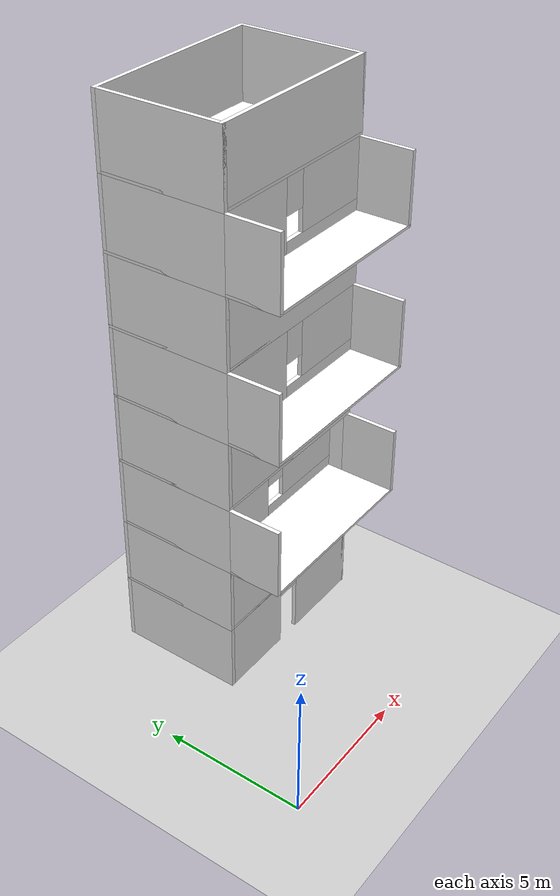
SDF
<sdf version="1.6">
 <world name="default">
  <light name="sun" type="directional">
   <pose>0 0 10 0 -0 0</pose>
   <diffuse>0.8 0.8 0.8 1</diffuse>
   <specular>0.1 0.1 0.1 1</specular>
   <attenuation>
    <range>1000</range>
    <constant>0.9</constant>
    <linear>0.01</linear>
    <quadratic>0.001</quadratic>
   </attenuation>
   <direction>-0.5 0.5 -1</direction>
  </light>
  <model name="ground_plane">
   <static>1</static>
   <link name="link">
    <collision name="collision">
     <geometry><plane><normal>0 0 1</normal><size>100 100</size></plane></geometry>
     <surface><friction><ode><mu>100</mu><mu2>50</mu2></ode></friction></surface>
    </collision>
    <visual name="visual">
     <cast_shadows>0</cast_shadows>
     <geometry><plane><normal>0 0 1</normal><size>100 100</size></plane></geometry>
     <material>
      <script><uri>file://media/materials/scripts/gazebo.material</uri><name>Gazebo/Grey</name></script>
     </material>
    </visual>
   </link>
  </model>
  <gravity>0 0 -9.8</gravity>
  <magnetic_field>6e-06 2.3e-05 -4.2e-05</magnetic_field>
  <atmosphere type="adiabatic"/>
  <physics name="default_physics" default="0" type="ode">
   <max_step_size>0.001</max_step_size>
   <real_time_factor>1</real_time_factor>
   <real_time_update_rate>1000</real_time_update_rate>
  </physics>
  <scene><ambient>0.4 0.4 0.4 1</ambient><background>0.7 0.7 0.7 1</background><shadows>1</shadows></scene>
  <spherical_coordinates>
   <surface_model>EARTH_WGS84</surface_model>
   <latitude_deg>0</latitude_deg>
   <longitude_deg>0</longitude_deg>
   <elevation>0</elevation>
   <heading_deg>0</heading_deg>
  </spherical_coordinates>
  <model name="build_1">
   <pose>6.28355 7.0071 0 0 -0 0</pose>
   <link name="Floor_10">
    <collision name="Floor_10_Collision">
     <geometry><box><size>6.75 4.5 0.1</size></box></geometry>
     <pose>0 0 0.05 0 -0 0</pose>
    </collision>
    <visual name="Floor_10_Visual">
     <pose>0 0 0.05 0 -0 0</pose>
     <geometry><box><size>6.75 4.5 0.1</size></box></geometry>
     <material>
      <script>
       <uri>model://build_1/materials/scripts</uri>
       <uri>model://build_1/materials/textures</uri>
       <name>wallCrack4/Diffuse</name>
      </script>
      <ambient>1 1 1 1</ambient>
     </material>
    </visual>
    <pose>0 0 2.5 0 -0 0</pose>
   </link>
   <link name="Floor_11">
    <collision name="Floor_11_Collision">
     <geometry><box><size>6.75 6.35 0.1</size></box></geometry>
     <pose>0 0 0.05 0 -0 0</pose>
    </collision>
    <visual name="Floor_11_Visual">
     <pose>0 0 0.05 0 -0 0</pose>
     <geometry><box><size>6.75 6.35 0.1</size></box></geometry>
     <material>
      <script>
       <uri>model://build_1/materials/scripts</uri>
       <uri>model://build_1/materials/textures</uri>
       <name>wallCrack4/Diffuse</name>
      </script>
      <ambient>1 1 1 1</ambient>
     </material>
    </visual>
    <pose>0 -0.925 5 0 -0 0</pose>
   </link>
   <link name="Floor_12">
    <collision name="Floor_12_Collision">
     <geometry><box><size>6.75 4.5 0.1</size></box></geometry>
     <pose>0 0 0.05 0 -0 0</pose>
    </collision>
    <visual name="Floor_12_Visual">
     <pose>0 0 0.05 0 -0 0</pose>
     <geometry><box><size>6.75 4.5 0.1</size></box></geometry>
     <material>
      <script>
       <uri>model://build_1/materials/scripts</uri>
       <uri>model://build_1/materials/textures</uri>
       <name>wallCrack4/Diffuse</name>
      </script>
      <ambient>1 1 1 1</ambient>
     </material>
    </visual>
    <pose>0 0 7.5 0 -0 0</pose>
   </link>
   <link name="Floor_13">
    <collision name="Floor_13_Collision">
     <geometry><box><size>6.75 6.35 0.1</size></box></geometry>
     <pose>0 0 0.05 0 -0 0</pose>
    </collision>
    <visual name="Floor_13_Visual">
     <pose>0 0 0.05 0 -0 0</pose>
     <geometry><box><size>6.75 6.35 0.1</size></box></geometry>
     <material>
      <script>
       <uri>model://build_1/materials/scripts</uri>
       <uri>model://build_1/materials/textures</uri>
       <name>wallCrack4/Diffuse</name>
      </script>
      <ambient>1 1 1 1</ambient>
     </material>
    </visual>
    <pose>0 -0.925 10 0 -0 0</pose>
   </link>
   <link name="Floor_14">
    <collision name="Floor_14_Collision">
     <geometry><box><size>6.75 4.5 0.1</size></box></geometry>
     <pose>0 0 0.05 0 -0 0</pose>
    </collision>
    <visual name="Floor_14_Visual">
     <pose>0 0 0.05 0 -0 0</pose>
     <geometry><box><size>6.75 4.5 0.1</size></box></geometry>
     <material>
      <script>
       <uri>model://build_1/materials/scripts</uri>
       <uri>model://build_1/materials/textures</uri>
       <name>wallCrack4/Diffuse</name>
      </script>
      <ambient>1 1 1 1</ambient>
     </material>
    </visual>
    <pose>0 0 12.5 0 -0 0</pose>
   </link>
   <link name="Floor_15">
    <collision name="Floor_15_Collision">
     <geometry><box><size>6.75 6.35 0.1</size></box></geometry>
     <pose>0 0 0.05 0 -0 0</pose>
    </collision>
    <visual name="Floor_15_Visual">
     <pose>0 0 0.05 0 -0 0</pose>
     <geometry><box><size>6.75 6.35 0.1</size></box></geometry>
     <material>
      <script>
       <uri>model://build_1/materials/scripts</uri>
       <uri>model://build_1/materials/textures</uri>
       <name>wallCrack4/Diffuse</name>
      </script>
      <ambient>1 1 1 1</ambient>
     </material>
    </visual>
    <pose>0 -0.925 15 0 -0 0</pose>
   </link>
   <link name="Floor_16">
    <collision name="Floor_16_Collision">
     <geometry><box><size>6.75 4.5 0.1</size></box></geometry>
     <pose>0 0 0.05 0 -0 0</pose>
    </collision>
    <visual name="Floor_16_Visual">
     <pose>0 0 0.05 0 -0 0</pose>
     <geometry><box><size>6.75 4.5 0.1</size></box></geometry>
     <material>
      <script>
       <uri>model://build_1/materials/scripts</uri>
       <uri>model://build_1/materials/textures</uri>
       <name>wallCrack4/Diffuse</name>
      </script>
      <ambient>1 1 1 1</ambient>
     </material>
    </visual>
    <pose>0 0 17.5 0 -0 0</pose>
   </link>
   <link name="Wall_169">
    <pose>0 -2.175 0 0 -0 0</pose>
    <visual name="Wall_169_Visual_0">
     <pose>-1.98282 0 1.25 0 -0 0</pose>
     <geometry><box><size>2.78436 0.15 2.5</size></box></geometry>
     <material>
      <script>
       <uri>model://build_1/materials/scripts</uri>
       <uri>model://build_1/materials/textures</uri>
       <name>wallCrack7/Diffuse</name>
      </script>
      <ambient>1 1 1 1</ambient>
     </material>
    </visual>
    <collision name="Wall_169_Collision_0">
     <geometry><box><size>2.78436 0.15 2.5</size></box></geometry>
     <pose>-1.98282 0 1.25 0 -0 0</pose>
    </collision>
    <visual name="Wall_169_Visual_1">
     <pose>1.84218 0 1.25 0 -0 0</pose>
     <geometry><box><size>3.06564 0.15 2.5</size></box></geometry>
     <material>
      <script>
       <uri>model://build_1/materials/scripts</uri>
       <uri>model://build_1/materials/textures</uri>
       <name>wallCrack4/Diffuse</name>
      </script>
      <ambient>1 1 1 1</ambient>
     </material>
    </visual>
    <collision name="Wall_169_Collision_1">
     <geometry><box><size>3.06564 0.15 2.5</size></box></geometry>
     <pose>1.84218 0 1.25 0 -0 0</pose>
    </collision>
    <visual name="Wall_169_Visual_2">
     <pose>-0.140641 0 2.25 0 -0 0</pose>
     <geometry><box><size>0.9 0.15 0.5</size></box></geometry>
     <material>
      <script>
       <uri>model://build_1/materials/scripts</uri>
       <uri>model://build_1/materials/textures</uri>
       <name>wallCrack4/Diffuse</name>
      </script>
      <ambient>1 1 1 1</ambient>
     </material>
    </visual>
    <collision name="Wall_169_Collision_2">
     <geometry><box><size>0.9 0.15 0.5</size></box></geometry>
     <pose>-0.140641 0 2.25 0 -0 0</pose>
    </collision>
   </link>
   <link name="Wall_170">
    <collision name="Wall_170_Collision">
     <geometry><box><size>4.5 0.15 2.5</size></box></geometry>
     <pose>0 0 1.25 0 -0 0</pose>
    </collision>
    <visual name="Wall_170_Visual">
     <pose>0 0 1.25 0 -0 0</pose>
     <geometry><box><size>4.5 0.15 2.5</size></box></geometry>
     <material>
      <script>
       <uri>model://build_1/materials/scripts</uri>
       <uri>model://build_1/materials/textures</uri>
       <name>wallCrack8/Diffuse</name>
      </script>
      <ambient>1 1 1 1</ambient>
     </material>
    </visual>
    <pose>3.3 0 0 0 -0 1.5708</pose>
   </link>
   <link name="Wall_171">
    <collision name="Wall_171_Collision">
     <geometry><box><size>6.75 0.15 2.5</size></box></geometry>
     <pose>0 0 1.25 0 -0 0</pose>
    </collision>
    <visual name="Wall_171_Visual">
     <pose>0 0 1.25 0 -0 0</pose>
     <geometry><box><size>6.75 0.15 2.5</size></box></geometry>
     <material>
      <script>
       <uri>model://build_1/materials/scripts</uri>
       <uri>model://build_1/materials/textures</uri>
       <name>wallCrack8/Diffuse</name>
      </script>
      <ambient>1 1 1 1</ambient>
     </material>
    </visual>
    <pose>0 2.175 0 0 -0 3.14159</pose>
   </link>
   <link name="Wall_173">
    <collision name="Wall_173_Collision">
     <geometry><box><size>4.5 0.15 2.5</size></box></geometry>
     <pose>0 0 1.25 0 -0 0</pose>
    </collision>
    <visual name="Wall_173_Visual">
     <pose>0 0 1.25 0 -0 0</pose>
     <geometry><box><size>4.5 0.15 2.5</size></box></geometry>
     <material>
      <script>
       <uri>model://build_1/materials/scripts</uri>
       <uri>model://build_1/materials/textures</uri>
       <name>wallCrack8/Diffuse</name>
      </script>
      <ambient>1 1 1 1</ambient>
     </material>
    </visual>
    <pose>-3.3 0 0 0 0 -1.5708</pose>
   </link>
   <link name="Wall_175">
    <collision name="Wall_175_Collision">
     <geometry><box><size>6.75 0.15 2.5</size></box></geometry>
     <pose>0 0 1.25 0 -0 0</pose>
    </collision>
    <visual name="Wall_175_Visual">
     <pose>0 0 1.25 0 -0 0</pose>
     <geometry><box><size>6.75 0.15 2.5</size></box></geometry>
     <material>
      <script>
       <uri>model://build_1/materials/scripts</uri>
       <uri>model://build_1/materials/textures</uri>
       <name>wallCrack4/Diffuse</name>
      </script>
      <ambient>1 1 1 1</ambient>
     </material>
    </visual>
    <pose>0 -2.175 2.5 0 -0 0</pose>
   </link>
   <link name="Wall_176">
    <collision name="Wall_176_Collision">
     <geometry><box><size>4.5 0.15 2.5</size></box></geometry>
     <pose>0 0 1.25 0 -0 0</pose>
    </collision>
    <visual name="Wall_176_Visual">
     <pose>0 0 1.25 0 -0 0</pose>
     <geometry><box><size>4.5 0.15 2.5</size></box></geometry>
     <material>
      <script>
       <uri>model://build_1/materials/scripts</uri>
       <uri>model://build_1/materials/textures</uri>
       <name>wallCrack7/Diffuse</name>
      </script>
      <ambient>1 1 1 1</ambient>
     </material>
    </visual>
    <pose>3.3 0 2.5 0 -0 1.5708</pose>
   </link>
   <link name="Wall_177">
    <collision name="Wall_177_Collision">
     <geometry><box><size>6.75 0.15 2.5</size></box></geometry>
     <pose>0 0 1.25 0 -0 0</pose>
    </collision>
    <visual name="Wall_177_Visual">
     <pose>0 0 1.25 0 -0 0</pose>
     <geometry><box><size>6.75 0.15 2.5</size></box></geometry>
     <material>
      <script>
       <uri>model://build_1/materials/scripts</uri>
       <uri>model://build_1/materials/textures</uri>
       <name>wallCrack4/Diffuse</name>
      </script>
      <ambient>1 1 1 1</ambient>
     </material>
    </visual>
    <pose>0 2.175 2.5 0 -0 3.14159</pose>
   </link>
   <link name="Wall_178">
    <collision name="Wall_178_Collision">
     <geometry><box><size>4.5 0.15 2.5</size></box></geometry>
     <pose>0 0 1.25 0 -0 0</pose>
    </collision>
    <visual name="Wall_178_Visual">
     <pose>0 0 1.25 0 -0 0</pose>
     <geometry><box><size>4.5 0.15 2.5</size></box></geometry>
     <material>
      <script>
       <uri>model://build_1/materials/scripts</uri>
       <uri>model://build_1/materials/textures</uri>
       <name>wallCrack3/Diffuse</name>
      </script>
      <ambient>1 1 1 1</ambient>
     </material>
    </visual>
    <pose>-3.3 0 2.5 0 0 -1.5708</pose>
   </link>
   <link name="Wall_180">
    <collision name="Wall_180_Collision">
     <geometry><box><size>4.5 0.15 2.5</size></box></geometry>
     <pose>0 0 1.25 0 -0 0</pose>
    </collision>
    <visual name="Wall_180_Visual">
     <pose>0 0 1.25 0 -0 0</pose>
     <geometry><box><size>4.5 0.15 2.5</size></box></geometry>
     <material>
      <script>
       <uri>model://build_1/materials/scripts</uri>
       <uri>model://build_1/materials/textures</uri>
       <name>wallCrack4/Diffuse</name>
      </script>
      <ambient>1 1 1 1</ambient>
     </material>
    </visual>
    <pose>3.3 0 5 0 -0 1.5708</pose>
   </link>
   <link name="Wall_181">
    <collision name="Wall_181_Collision">
     <geometry><box><size>6.75 0.15 2.5</size></box></geometry>
     <pose>0 0 1.25 0 -0 0</pose>
    </collision>
    <visual name="Wall_181_Visual">
     <pose>0 0 1.25 0 -0 0</pose>
     <geometry><box><size>6.75 0.15 2.5</size></box></geometry>
     <material>
      <script>
       <uri>model://build_1/materials/scripts</uri>
       <uri>model://build_1/materials/textures</uri>
       <name>wallCrack7/Diffuse</name>
      </script>
      <ambient>1 1 1 1</ambient>
     </material>
    </visual>
    <pose>0 2.175 5 0 -0 3.14159</pose>
   </link>
   <link name="Wall_182">
    <collision name="Wall_182_Collision">
     <geometry><box><size>4.5 0.15 2.5</size></box></geometry>
     <pose>0 0 1.25 0 -0 0</pose>
    </collision>
    <visual name="Wall_182_Visual">
     <pose>0 0 1.25 0 -0 0</pose>
     <geometry><box><size>4.5 0.15 2.5</size></box></geometry>
     <material>
      <script>
       <uri>model://build_1/materials/scripts</uri>
       <uri>model://build_1/materials/textures</uri>
       <name>wallCrack4/Diffuse</name>
      </script>
      <ambient>1 1 1 1</ambient>
     </material>
    </visual>
    <pose>-3.3 0 5 0 0 -1.5708</pose>
   </link>
   <link name="Wall_183">
    <collision name="Wall_183_Collision">
     <geometry><box><size>2 0.15 2.5</size></box></geometry>
     <pose>0 0 1.25 0 -0 0</pose>
    </collision>
    <visual name="Wall_183_Visual">
     <pose>0 0 1.25 0 -0 0</pose>
     <geometry><box><size>2 0.15 2.5</size></box></geometry>
     <material>
      <script>
       <uri>model://build_1/materials/scripts</uri>
       <uri>model://build_1/materials/textures</uri>
       <name>wallCrack4/Diffuse</name>
      </script>
      <ambient>1 1 1 1</ambient>
     </material>
    </visual>
    <pose>-3.3 -3.1 5 0 0 -1.5708</pose>
   </link>
   <link name="Wall_185">
    <collision name="Wall_185_Collision">
     <geometry><box><size>2 0.15 2.5</size></box></geometry>
     <pose>0 0 1.25 0 -0 0</pose>
    </collision>
    <visual name="Wall_185_Visual">
     <pose>0 0 1.25 0 -0 0</pose>
     <geometry><box><size>2 0.15 2.5</size></box></geometry>
     <material>
      <script>
       <uri>model://build_1/materials/scripts</uri>
       <uri>model://build_1/materials/textures</uri>
       <name>wallCrack4/Diffuse</name>
      </script>
      <ambient>1 1 1 1</ambient>
     </material>
    </visual>
    <pose>3.3 -3.1 5 0 0 -1.5708</pose>
   </link>
   <link name="Wall_195">
    <pose>0.023026 -1.48981 5 0 -0 0</pose>
    <visual name="Wall_195_Visual_0">
     <pose>-1.83079 0 1.25 0 -0 0</pose>
     <geometry><box><size>2.83842 0.15 2.5</size></box></geometry>
     <material>
      <script>
       <uri>model://build_1/materials/scripts</uri>
       <uri>model://build_1/materials/textures</uri>
       <name>wallCrack4/Diffuse</name>
      </script>
      <ambient>1 1 1 1</ambient>
     </material>
    </visual>
    <collision name="Wall_195_Collision_0">
     <geometry><box><size>2.83842 0.15 2.5</size></box></geometry>
     <pose>-1.83079 0 1.25 0 -0 0</pose>
    </collision>
    <visual name="Wall_195_Visual_1">
     <pose>1.41921 0 0.25 0 -0 0</pose>
     <geometry><box><size>3.66158 0.15 0.5</size></box></geometry>
     <material>
      <script>
       <uri>model://build_1/materials/scripts</uri>
       <uri>model://build_1/materials/textures</uri>
       <name>wallCrack4/Diffuse</name>
      </script>
      <ambient>1 1 1 1</ambient>
     </material>
    </visual>
    <collision name="Wall_195_Collision_1">
     <geometry><box><size>3.66158 0.15 0.5</size></box></geometry>
     <pose>1.41921 0 0.25 0 -0 0</pose>
    </collision>
    <visual name="Wall_195_Visual_2">
     <pose>1.81921 0 1.5 0 -0 0</pose>
     <geometry><box><size>2.86158 0.15 2</size></box></geometry>
     <material>
      <script>
       <uri>model://build_1/materials/scripts</uri>
       <uri>model://build_1/materials/textures</uri>
       <name>wallCrack4/Diffuse</name>
      </script>
      <ambient>1 1 1 1</ambient>
     </material>
    </visual>
    <collision name="Wall_195_Collision_2">
     <geometry><box><size>2.86158 0.15 2</size></box></geometry>
     <pose>1.81921 0 1.5 0 -0 0</pose>
    </collision>
    <visual name="Wall_195_Visual_3">
     <pose>-0.01158 0 1.9 0 -0 0</pose>
     <geometry><box><size>0.8 0.15 1.2</size></box></geometry>
     <material>
      <script>
       <uri>model://build_1/materials/scripts</uri>
       <uri>model://build_1/materials/textures</uri>
       <name>wallCrack4/Diffuse</name>
      </script>
      <ambient>1 1 1 1</ambient>
     </material>
    </visual>
    <collision name="Wall_195_Collision_3">
     <geometry><box><size>0.8 0.15 1.2</size></box></geometry>
     <pose>-0.01158 0 1.9 0 -0 0</pose>
    </collision>
   </link>
   <link name="Wall_198">
    <collision name="Wall_198_Collision">
     <geometry><box><size>6.75 0.15 2.5</size></box></geometry>
     <pose>0 0 1.25 0 -0 0</pose>
    </collision>
    <visual name="Wall_198_Visual">
     <pose>0 0 1.25 0 -0 0</pose>
     <geometry><box><size>6.75 0.15 2.5</size></box></geometry>
     <material>
      <script>
       <uri>model://build_1/materials/scripts</uri>
       <uri>model://build_1/materials/textures</uri>
       <name>wallCrack4/Diffuse</name>
      </script>
      <ambient>1 1 1 1</ambient>
     </material>
    </visual>
    <pose>0 2.175 7.5 0 -0 3.14159</pose>
   </link>
   <link name="Wall_199">
    <collision name="Wall_199_Collision">
     <geometry><box><size>4.5 0.15 2.5</size></box></geometry>
     <pose>0 0 1.25 0 -0 0</pose>
    </collision>
    <visual name="Wall_199_Visual">
     <pose>0 0 1.25 0 -0 0</pose>
     <geometry><box><size>4.5 0.15 2.5</size></box></geometry>
     <material>
      <script>
       <uri>model://build_1/materials/scripts</uri>
       <uri>model://build_1/materials/textures</uri>
       <name>wallCrack4/Diffuse</name>
      </script>
      <ambient>1 1 1 1</ambient>
     </material>
    </visual>
    <pose>-3.3 0 7.5 0 0 -1.5708</pose>
   </link>
   <link name="Wall_203">
    <collision name="Wall_203_Collision">
     <geometry><box><size>4.5 0.15 2.5</size></box></geometry>
     <pose>0 0 1.25 0 -0 0</pose>
    </collision>
    <visual name="Wall_203_Visual">
     <pose>0 0 1.25 0 -0 0</pose>
     <geometry><box><size>4.5 0.15 2.5</size></box></geometry>
     <material>
      <script>
       <uri>model://build_1/materials/scripts</uri>
       <uri>model://build_1/materials/textures</uri>
       <name>wallCrack8/Diffuse</name>
      </script>
      <ambient>1 1 1 1</ambient>
     </material>
    </visual>
    <pose>3.3 0 7.5 0 0 -1.5708</pose>
   </link>
   <link name="Wall_204">
    <collision name="Wall_204_Collision">
     <geometry><box><size>6.75 0.15 2.5</size></box></geometry>
     <pose>0 0 1.25 0 -0 0</pose>
    </collision>
    <visual name="Wall_204_Visual">
     <pose>0 0 1.25 0 -0 0</pose>
     <geometry><box><size>6.75 0.15 2.5</size></box></geometry>
     <material>
      <script>
       <uri>model://build_1/materials/scripts</uri>
       <uri>model://build_1/materials/textures</uri>
       <name>wallCrack4/Diffuse</name>
      </script>
      <ambient>1 1 1 1</ambient>
     </material>
    </visual>
    <pose>0 -2.175 7.5 0 -0 3.14159</pose>
   </link>
   <link name="Wall_206">
    <collision name="Wall_206_Collision">
     <geometry><box><size>6.75 0.15 2.5</size></box></geometry>
     <pose>0 0 1.25 0 -0 0</pose>
    </collision>
    <visual name="Wall_206_Visual">
     <pose>0 0 1.25 0 -0 0</pose>
     <geometry><box><size>6.75 0.15 2.5</size></box></geometry>
     <material>
      <script>
       <uri>model://build_1/materials/scripts</uri>
       <uri>model://build_1/materials/textures</uri>
       <name>wallCrack4/Diffuse</name>
      </script>
      <ambient>1 1 1 1</ambient>
     </material>
    </visual>
    <pose>0 2.175 10 0 -0 3.14159</pose>
   </link>
   <link name="Wall_207">
    <collision name="Wall_207_Collision">
     <geometry><box><size>4.5 0.15 2.5</size></box></geometry>
     <pose>0 0 1.25 0 -0 0</pose>
    </collision>
    <visual name="Wall_207_Visual">
     <pose>0 0 1.25 0 -0 0</pose>
     <geometry><box><size>4.5 0.15 2.5</size></box></geometry>
     <material>
      <script>
       <uri>model://build_1/materials/scripts</uri>
       <uri>model://build_1/materials/textures</uri>
       <name>wallCrack4/Diffuse</name>
      </script>
      <ambient>1 1 1 1</ambient>
     </material>
    </visual>
    <pose>-3.3 0 10 0 0 -1.5708</pose>
   </link>
   <link name="Wall_208">
    <collision name="Wall_208_Collision">
     <geometry><box><size>4.5 0.15 2.5</size></box></geometry>
     <pose>0 0 1.25 0 -0 0</pose>
    </collision>
    <visual name="Wall_208_Visual">
     <pose>0 0 1.25 0 -0 0</pose>
     <geometry><box><size>4.5 0.15 2.5</size></box></geometry>
     <material>
      <script>
       <uri>model://build_1/materials/scripts</uri>
       <uri>model://build_1/materials/textures</uri>
       <name>wallCrack4/Diffuse</name>
      </script>
      <ambient>1 1 1 1</ambient>
     </material>
    </visual>
    <pose>3.3 0 10 0 0 -1.5708</pose>
   </link>
   <link name="Wall_210">
    <collision name="Wall_210_Collision">
     <geometry><box><size>2 0.15 2.5</size></box></geometry>
     <pose>0 0 1.25 0 -0 0</pose>
    </collision>
    <visual name="Wall_210_Visual">
     <pose>0 0 1.25 0 -0 0</pose>
     <geometry><box><size>2 0.15 2.5</size></box></geometry>
     <material>
      <script>
       <uri>model://build_1/materials/scripts</uri>
       <uri>model://build_1/materials/textures</uri>
       <name>wallCrack4/Diffuse</name>
      </script>
      <ambient>1 1 1 1</ambient>
     </material>
    </visual>
    <pose>-3.3 -3.1 10 0 0 -1.5708</pose>
   </link>
   <link name="Wall_212">
    <collision name="Wall_212_Collision">
     <geometry><box><size>2 0.15 2.5</size></box></geometry>
     <pose>0 0 1.25 0 -0 0</pose>
    </collision>
    <visual name="Wall_212_Visual">
     <pose>0 0 1.25 0 -0 0</pose>
     <geometry><box><size>2 0.15 2.5</size></box></geometry>
     <material>
      <script>
       <uri>model://build_1/materials/scripts</uri>
       <uri>model://build_1/materials/textures</uri>
       <name>wallCrack4/Diffuse</name>
      </script>
      <ambient>1 1 1 1</ambient>
     </material>
    </visual>
    <pose>3.3 -3.1 10 0 0 -1.5708</pose>
   </link>
   <link name="Wall_214">
    <pose>0 -2.175 10 0 -0 0</pose>
    <visual name="Wall_214_Visual_0">
     <pose>-1.88938 0 1.25 0 -0 0</pose>
     <geometry><box><size>2.97124 0.15 2.5</size></box></geometry>
     <material>
      <script>
       <uri>model://build_1/materials/scripts</uri>
       <uri>model://build_1/materials/textures</uri>
       <name>wallCrack4/Diffuse</name>
      </script>
      <ambient>1 1 1 1</ambient>
     </material>
    </visual>
    <collision name="Wall_214_Collision_0">
     <geometry><box><size>2.97124 0.15 2.5</size></box></geometry>
     <pose>-1.88938 0 1.25 0 -0 0</pose>
    </collision>
    <visual name="Wall_214_Visual_1">
     <pose>1.48562 0 0.25 0 -0 0</pose>
     <geometry><box><size>3.77876 0.15 0.5</size></box></geometry>
     <material>
      <script>
       <uri>model://build_1/materials/scripts</uri>
       <uri>model://build_1/materials/textures</uri>
       <name>wallCrack4/Diffuse</name>
      </script>
      <ambient>1 1 1 1</ambient>
     </material>
    </visual>
    <collision name="Wall_214_Collision_1">
     <geometry><box><size>3.77876 0.15 0.5</size></box></geometry>
     <pose>1.48562 0 0.25 0 -0 0</pose>
    </collision>
    <visual name="Wall_214_Visual_2">
     <pose>1.88562 0 1.5 0 -0 0</pose>
     <geometry><box><size>2.97876 0.15 2</size></box></geometry>
     <material>
      <script>
       <uri>model://build_1/materials/scripts</uri>
       <uri>model://build_1/materials/textures</uri>
       <name>wallCrack4/Diffuse</name>
      </script>
      <ambient>1 1 1 1</ambient>
     </material>
    </visual>
    <collision name="Wall_214_Collision_2">
     <geometry><box><size>2.97876 0.15 2</size></box></geometry>
     <pose>1.88562 0 1.5 0 -0 0</pose>
    </collision>
    <visual name="Wall_214_Visual_3">
     <pose>-0.003763 0 1.9 0 -0 0</pose>
     <geometry><box><size>0.8 0.15 1.2</size></box></geometry>
     <material>
      <script>
       <uri>model://build_1/materials/scripts</uri>
       <uri>model://build_1/materials/textures</uri>
       <name>wallCrack4/Diffuse</name>
      </script>
      <ambient>1 1 1 1</ambient>
     </material>
    </visual>
    <collision name="Wall_214_Collision_3">
     <geometry><box><size>0.8 0.15 1.2</size></box></geometry>
     <pose>-0.003763 0 1.9 0 -0 0</pose>
    </collision>
   </link>
   <link name="Wall_216">
    <collision name="Wall_216_Collision">
     <geometry><box><size>6.75 0.15 2.5</size></box></geometry>
     <pose>0 0 1.25 0 -0 0</pose>
    </collision>
    <visual name="Wall_216_Visual">
     <pose>0 0 1.25 0 -0 0</pose>
     <geometry><box><size>6.75 0.15 2.5</size></box></geometry>
     <material>
      <script>
       <uri>model://build_1/materials/scripts</uri>
       <uri>model://build_1/materials/textures</uri>
       <name>wallCrack4/Diffuse</name>
      </script>
      <ambient>1 1 1 1</ambient>
     </material>
    </visual>
    <pose>0 2.175 12.5 0 -0 3.14159</pose>
   </link>
   <link name="Wall_217">
    <collision name="Wall_217_Collision">
     <geometry><box><size>4.5 0.15 2.5</size></box></geometry>
     <pose>0 0 1.25 0 -0 0</pose>
    </collision>
    <visual name="Wall_217_Visual">
     <pose>0 0 1.25 0 -0 0</pose>
     <geometry><box><size>4.5 0.15 2.5</size></box></geometry>
     <material>
      <script>
       <uri>model://build_1/materials/scripts</uri>
       <uri>model://build_1/materials/textures</uri>
       <name>wallCrack4/Diffuse</name>
      </script>
      <ambient>1 1 1 1</ambient>
     </material>
    </visual>
    <pose>-3.3 0 12.5 0 0 -1.5708</pose>
   </link>
   <link name="Wall_218">
    <collision name="Wall_218_Collision">
     <geometry><box><size>4.5 0.15 2.5</size></box></geometry>
     <pose>0 0 1.25 0 -0 0</pose>
    </collision>
    <visual name="Wall_218_Visual">
     <pose>0 0 1.25 0 -0 0</pose>
     <geometry><box><size>4.5 0.15 2.5</size></box></geometry>
     <material>
      <script>
       <uri>model://build_1/materials/scripts</uri>
       <uri>model://build_1/materials/textures</uri>
       <name>wallCrack4/Diffuse</name>
      </script>
      <ambient>1 1 1 1</ambient>
     </material>
    </visual>
    <pose>3.3 0 12.5 0 0 -1.5708</pose>
   </link>
   <link name="Wall_222">
    <collision name="Wall_222_Collision">
     <geometry><box><size>6.75 0.15 2.5</size></box></geometry>
     <pose>0 0 1.25 0 -0 0</pose>
    </collision>
    <visual name="Wall_222_Visual">
     <pose>0 0 1.25 0 -0 0</pose>
     <geometry><box><size>6.75 0.15 2.5</size></box></geometry>
     <material>
      <script>
       <uri>model://build_1/materials/scripts</uri>
       <uri>model://build_1/materials/textures</uri>
       <name>wallCrack4/Diffuse</name>
      </script>
      <ambient>1 1 1 1</ambient>
     </material>
    </visual>
    <pose>0 -2.175 12.5 0 -0 0</pose>
   </link>
   <link name="Wall_224">
    <collision name="Wall_224_Collision">
     <geometry><box><size>6.75 0.15 2.5</size></box></geometry>
     <pose>0 0 1.25 0 -0 0</pose>
    </collision>
    <visual name="Wall_224_Visual">
     <pose>0 0 1.25 0 -0 0</pose>
     <geometry><box><size>6.75 0.15 2.5</size></box></geometry>
     <material>
      <script>
       <uri>model://build_1/materials/scripts</uri>
       <uri>model://build_1/materials/textures</uri>
       <name>wallCrack4/Diffuse</name>
      </script>
      <ambient>1 1 1 1</ambient>
     </material>
    </visual>
    <pose>0 2.175 15 0 -0 3.14159</pose>
   </link>
   <link name="Wall_225">
    <collision name="Wall_225_Collision">
     <geometry><box><size>4.5 0.15 2.5</size></box></geometry>
     <pose>0 0 1.25 0 -0 0</pose>
    </collision>
    <visual name="Wall_225_Visual">
     <pose>0 0 1.25 0 -0 0</pose>
     <geometry><box><size>4.5 0.15 2.5</size></box></geometry>
     <material>
      <script>
       <uri>model://build_1/materials/scripts</uri>
       <uri>model://build_1/materials/textures</uri>
       <name>wallCrack4/Diffuse</name>
      </script>
      <ambient>1 1 1 1</ambient>
     </material>
    </visual>
    <pose>-3.3 0 15 0 0 -1.5708</pose>
   </link>
   <link name="Wall_226">
    <collision name="Wall_226_Collision">
     <geometry><box><size>4.5 0.15 2.5</size></box></geometry>
     <pose>0 0 1.25 0 -0 0</pose>
    </collision>
    <visual name="Wall_226_Visual">
     <pose>0 0 1.25 0 -0 0</pose>
     <geometry><box><size>4.5 0.15 2.5</size></box></geometry>
     <material>
      <script>
       <uri>model://build_1/materials/scripts</uri>
       <uri>model://build_1/materials/textures</uri>
       <name>wallCrack4/Diffuse</name>
      </script>
      <ambient>1 1 1 1</ambient>
     </material>
    </visual>
    <pose>3.3 0 15 0 0 -1.5708</pose>
   </link>
   <link name="Wall_228">
    <collision name="Wall_228_Collision">
     <geometry><box><size>2 0.15 2.5</size></box></geometry>
     <pose>0 0 1.25 0 -0 0</pose>
    </collision>
    <visual name="Wall_228_Visual">
     <pose>0 0 1.25 0 -0 0</pose>
     <geometry><box><size>2 0.15 2.5</size></box></geometry>
     <material>
      <script>
       <uri>model://build_1/materials/scripts</uri>
       <uri>model://build_1/materials/textures</uri>
       <name>wallCrack4/Diffuse</name>
      </script>
      <ambient>1 1 1 1</ambient>
     </material>
    </visual>
    <pose>-3.3 -3.1 15 0 0 -1.5708</pose>
   </link>
   <link name="Wall_230">
    <collision name="Wall_230_Collision">
     <geometry><box><size>2 0.15 2.5</size></box></geometry>
     <pose>0 0 1.25 0 -0 0</pose>
    </collision>
    <visual name="Wall_230_Visual">
     <pose>0 0 1.25 0 -0 0</pose>
     <geometry><box><size>2 0.15 2.5</size></box></geometry>
     <material>
      <script>
       <uri>model://build_1/materials/scripts</uri>
       <uri>model://build_1/materials/textures</uri>
       <name>wallCrack4/Diffuse</name>
      </script>
      <ambient>1 1 1 1</ambient>
     </material>
    </visual>
    <pose>3.3 -3.1 15 0 0 -1.5708</pose>
   </link>
   <link name="Wall_232">
    <pose>0 -2.175 15 0 -0 0</pose>
    <visual name="Wall_232_Visual_0">
     <pose>-1.93501 0 1.25 0 -0 0</pose>
     <geometry><box><size>2.87999 0.15 2.5</size></box></geometry>
     <material>
      <script>
       <uri>model://build_1/materials/scripts</uri>
       <uri>model://build_1/materials/textures</uri>
       <name>wallCrack4/Diffuse</name>
      </script>
      <ambient>1 1 1 1</ambient>
     </material>
    </visual>
    <collision name="Wall_232_Collision_0">
     <geometry><box><size>2.87999 0.15 2.5</size></box></geometry>
     <pose>-1.93501 0 1.25 0 -0 0</pose>
    </collision>
    <visual name="Wall_232_Visual_1">
     <pose>1.43999 0 0.25 0 -0 0</pose>
     <geometry><box><size>3.87001 0.15 0.5</size></box></geometry>
     <material>
      <script>
       <uri>model://build_1/materials/scripts</uri>
       <uri>model://build_1/materials/textures</uri>
       <name>wallCrack4/Diffuse</name>
      </script>
      <ambient>1 1 1 1</ambient>
     </material>
    </visual>
    <collision name="Wall_232_Collision_1">
     <geometry><box><size>3.87001 0.15 0.5</size></box></geometry>
     <pose>1.43999 0 0.25 0 -0 0</pose>
    </collision>
    <visual name="Wall_232_Visual_2">
     <pose>1.83999 0 1.5 0 -0 0</pose>
     <geometry><box><size>3.07002 0.15 2</size></box></geometry>
     <material>
      <script>
       <uri>model://build_1/materials/scripts</uri>
       <uri>model://build_1/materials/textures</uri>
       <name>wallCrack4/Diffuse</name>
      </script>
      <ambient>1 1 1 1</ambient>
     </material>
    </visual>
    <collision name="Wall_232_Collision_2">
     <geometry><box><size>3.07002 0.15 2</size></box></geometry>
     <pose>1.83999 0 1.5 0 -0 0</pose>
    </collision>
    <visual name="Wall_232_Visual_3">
     <pose>-0.095015 0 1.9 0 -0 0</pose>
     <geometry><box><size>0.8 0.15 1.2</size></box></geometry>
     <material>
      <script>
       <uri>model://build_1/materials/scripts</uri>
       <uri>model://build_1/materials/textures</uri>
       <name>wallCrack4/Diffuse</name>
      </script>
      <ambient>1 1 1 1</ambient>
     </material>
    </visual>
    <collision name="Wall_232_Collision_3">
     <geometry><box><size>0.8 0.15 1.2</size></box></geometry>
     <pose>-0.095015 0 1.9 0 -0 0</pose>
    </collision>
   </link>
   <link name="Wall_234">
    <collision name="Wall_234_Collision">
     <geometry><box><size>6.75 0.15 2.5</size></box></geometry>
     <pose>0 0 1.25 0 -0 0</pose>
    </collision>
    <visual name="Wall_234_Visual">
     <pose>0 0 1.25 0 -0 0</pose>
     <geometry><box><size>6.75 0.15 2.5</size></box></geometry>
     <material>
      <script>
       <uri>model://build_1/materials/scripts</uri>
       <uri>model://build_1/materials/textures</uri>
       <name>wallCrack4/Diffuse</name>
      </script>
      <ambient>1 1 1 1</ambient>
     </material>
    </visual>
    <pose>0 2.175 17.5 0 -0 3.14159</pose>
   </link>
   <link name="Wall_235">
    <collision name="Wall_235_Collision">
     <geometry><box><size>4.5 0.15 2.5</size></box></geometry>
     <pose>0 0 1.25 0 -0 0</pose>
    </collision>
    <visual name="Wall_235_Visual">
     <pose>0 0 1.25 0 -0 0</pose>
     <geometry><box><size>4.5 0.15 2.5</size></box></geometry>
     <material>
      <script>
       <uri>model://build_1/materials/scripts</uri>
       <uri>model://build_1/materials/textures</uri>
       <name>wallCrack4/Diffuse</name>
      </script>
      <ambient>1 1 1 1</ambient>
     </material>
    </visual>
    <pose>-3.3 0 17.5 0 0 -1.5708</pose>
   </link>
   <link name="Wall_236">
    <collision name="Wall_236_Collision">
     <geometry><box><size>4.5 0.15 2.5</size></box></geometry>
     <pose>0 0 1.25 0 -0 0</pose>
    </collision>
    <visual name="Wall_236_Visual">
     <pose>0 0 1.25 0 -0 0</pose>
     <geometry><box><size>4.5 0.15 2.5</size></box></geometry>
     <material>
      <script>
       <uri>model://build_1/materials/scripts</uri>
       <uri>model://build_1/materials/textures</uri>
       <name>wallCrack4/Diffuse</name>
      </script>
      <ambient>1 1 1 1</ambient>
     </material>
    </visual>
    <pose>3.3 0 17.5 0 0 -1.5708</pose>
   </link>
   <link name="Wall_239">
    <collision name="Wall_239_Collision">
     <geometry><box><size>6.75 0.15 2.5</size></box></geometry>
     <pose>0 0 1.25 0 -0 0</pose>
    </collision>
    <visual name="Wall_239_Visual">
     <pose>0 0 1.25 0 -0 0</pose>
     <geometry><box><size>6.75 0.15 2.5</size></box></geometry>
     <material>
      <script>
       <uri>model://build_1/materials/scripts</uri>
       <uri>model://build_1/materials/textures</uri>
       <name>wallCrack4/Diffuse</name>
      </script>
      <ambient>1 1 1 1</ambient>
     </material>
    </visual>
    <pose>0 -2.175 17.5 0 -0 0</pose>
   </link>
   <static>1</static>
  </model>
 </world>
</sdf>
